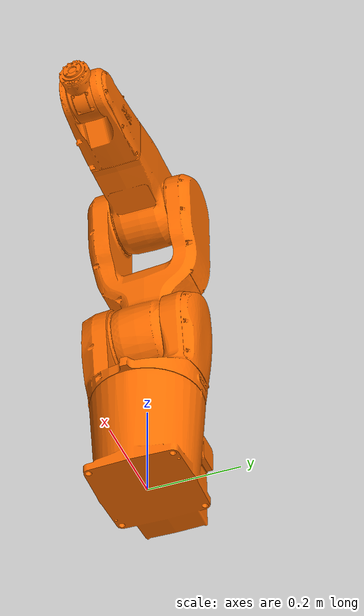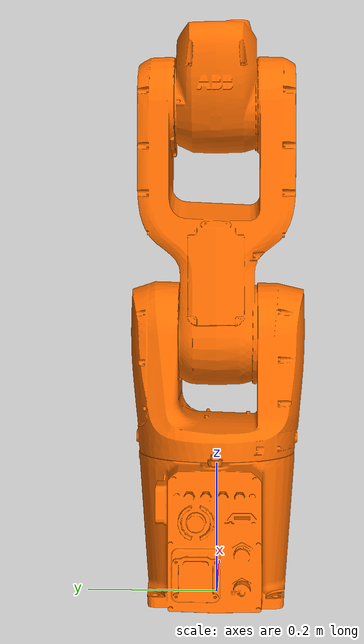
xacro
<?xml version="1.0" ?>

<robot name="abb_irb1200" xmlns:xacro="http://ros.org/wiki/xacro">
	<xacro:include filename="$(find abb_irb1200_support)/urdf/irb1200_macro.xacro"/>
	<!-- Links below are from axis of one link the next link (joint offsets). This is due the stl export with the base of the robot as the origin-->
	<xacro:abb_irb1200 prefix="" link_1_X="0" link_1_Y="0" link_1_Z="0.219" link_2_X="0" link_2_Y="0" link_2_Z="0.1801" link_3_X="0" link_3_Y="0" link_3_Z="0.35" link_4_X="0.1885" link_4_Y="0" link_4_Z="0.042" link_5_X="0.1555" link_5_Y="0" link_5_Z="0" link_6_X="0.077" link_6_Y="0" link_6_Z="0"/>
</robot>

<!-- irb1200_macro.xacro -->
<robot xmlns:xacro="http://ros.org/wiki/xacro">
<xacro:macro name="abb_irb1200" params="prefix link_1_X link_1_Y link_1_Z link_2_X link_2_Y link_2_Z link_3_X link_3_Y link_3_Z link_4_X link_4_Y link_4_Z link_5_X link_5_Y link_5_Z link_6_X link_6_Y link_6_Z">
    <!-- link list -->
    <link name="${prefix}base_link">
        <visual>
            <origin xyz="0 0 0" rpy="0 0 0"/>
            <geometry>
                <mesh filename="package://abb_irb1200_support/meshes/irb1200/visual/base_link.stl"/>
            </geometry>
            <material name="abb_orange">
                <color rgba="1 0.43 0 1"/>
            </material>
        </visual>
        <collision>
            <geometry>
                <mesh filename="package://abb_irb1200_support/meshes/irb1200/collision/base_link.stl"/>
            </geometry>
            <material name="yellow">
                <color rgba="0 1 1 1"/>
            </material>
        </collision>
    </link>
    <link name="${prefix}link_1">
        <visual>
            <origin xyz="-${link_1_X} -${link_1_Y} -${link_1_Z}" rpy="0 0 0"/>
            <geometry>
                <mesh filename="package://abb_irb1200_support/meshes/irb1200/visual/link_1.stl"/>
            </geometry>
            <material name="abb_orange"/>
        </visual>
        <collision>
            <origin xyz="-${link_1_X} -${link_1_Y} -${link_1_Z}" rpy="0 0 0"/>
            <geometry>
                <mesh filename="package://abb_irb1200_support/meshes/irb1200/collision/link_1.stl"/>
            </geometry>
            <material name="yellow"/>
        </collision>
    </link>
    <link name="${prefix}link_2">
        <visual>
            <origin xyz="
                -${link_2_X+link_1_X}
                -${link_2_Y+link_1_Y}
                -${link_2_Z+link_1_Z}" rpy="0 0 0"/>
            <geometry>
                <mesh filename="package://abb_irb1200_support/meshes/irb1200/visual/link_2.stl"/>
            </geometry>
            <material name="abb_orange"/>
        </visual>
        <collision>
            <origin xyz="
                -${link_2_X+link_1_X}
                -${link_2_Y+link_1_Y}
                -${link_2_Z+link_1_Z}" rpy="0 0 0"/>
            <geometry>
                <mesh filename="package://abb_irb1200_support/meshes/irb1200/collision/link_2.stl"/>
            </geometry>
            <material name="yellow"/>
        </collision>
    </link>
    <link name="${prefix}link_3">
        <visual>
            <origin xyz="
                -${link_3_X+link_2_X+link_1_X}
                -${link_3_Y+link_2_Y+link_1_Y}
                -${link_3_Z+link_2_Z+link_1_Z}" rpy="0 0 0"/>
            <geometry>
                <mesh filename="package://abb_irb1200_support/meshes/irb1200/visual/link_3.stl"/>
            </geometry>
            <material name="abb_orange"/>
        </visual>
        <collision>
            <origin xyz="
                -${link_3_X+link_2_X+link_1_X}
                -${link_3_Y+link_2_Y+link_1_Y}
                -${link_3_Z+link_2_Z+link_1_Z}" rpy="0 0 0"/>
            <geometry>
                <mesh filename="package://abb_irb1200_support/meshes/irb1200/collision/link_3.stl"/>
            </geometry>
            <material name="yellow"/>
        </collision>
    </link>
    <link name="${prefix}link_4">
        <visual>
            <origin xyz="
                -${link_4_X+link_3_X+link_2_X+link_1_X} -${link_4_Y+link_3_Y+link_2_Y+link_1_Y} -${link_4_Z+link_3_Z+link_2_Z+link_1_Z}" rpy="0 0 0"/>
            <geometry>
                <mesh filename="package://abb_irb1200_support/meshes/irb1200/visual/link_4.stl"/>
            </geometry>
            <material name="abb_orange"/>
        </visual>
        <collision>
            <origin xyz="
                -${link_4_X+link_3_X+link_2_X+link_1_X} -${link_4_Y+link_3_Y+link_2_Y+link_1_Y} -${link_4_Z+link_3_Z+link_2_Z+link_1_Z}" rpy="0 0 0"/>
            <geometry>
                <mesh filename="package://abb_irb1200_support/meshes/irb1200/collision/link_4.stl"/>
            </geometry>
            <material name="yellow"/>
        </collision>
    </link>
    <link name="${prefix}link_5">
        <visual>
            <origin xyz="
                -${link_5_X+link_4_X+link_3_X+link_2_X+link_1_X} -${link_5_Y+link_4_Y+link_3_Y+link_2_Y+link_1_Y} -${link_5_Z+link_4_Z+link_3_Z+link_2_Z+link_1_Z}" rpy="0 0 0"/>
            <geometry>
                <mesh filename="package://abb_irb1200_support/meshes/irb1200/visual/link_5.stl"/>
            </geometry>
            <material name="abb_orange"/>
        </visual>
        <collision>
            <origin xyz="
                -${link_5_X+link_4_X+link_3_X+link_2_X+link_1_X} -${link_5_Y+link_4_Y+link_3_Y+link_2_Y+link_1_Y} -${link_5_Z+link_4_Z+link_3_Z+link_2_Z+link_1_Z}" rpy="0 0 0"/>
            <geometry>
                <mesh filename="package://abb_irb1200_support/meshes/irb1200/collision/link_5.stl"/>
            </geometry>
            <material name="yellow"/>
        </collision>
    </link>
    <link name="${prefix}link_6">
        <visual>
            <origin xyz="
                -${link_6_X+link_5_X+link_4_X+link_3_X+link_2_X+link_1_X} -${link_6_Y+link_5_Y+link_4_Y+link_3_Y+link_2_Y+link_1_Y} -${link_6_Z+link_5_Z+link_4_Z+link_3_Z+link_2_Z+link_1_Z}" rpy="0 0 0"/>
            <geometry>
                <mesh filename="package://abb_irb1200_support/meshes/irb1200/visual/link_6.stl"/>
            </geometry>
            <material name="abb_orange"/>
        </visual>
        <collision>
            <origin xyz="
                -${link_6_X+link_5_X+link_4_X+link_3_X+link_2_X+link_1_X} -${link_6_Y+link_5_Y+link_4_Y+link_3_Y+link_2_Y+link_1_Y} -${link_6_Z+link_5_Z+link_4_Z+link_3_Z+link_2_Z+link_1_Z}" rpy="0 0 0"/>
            <geometry>
                <mesh filename="package://abb_irb1200_support/meshes/irb1200/collision/link_6.stl"/>
            </geometry>
            <material name="yellow"/>
        </collision>
    </link>
    <link name="${prefix}tool0"/>
    <!-- end of link list -->

    <!-- joint list -->
    <joint name="${prefix}joint_1" type="revolute">
        <origin xyz="0 0 ${link_1_Z}" rpy="0 0 0"/>
        <parent link="${prefix}base_link"/>
        <child link="${prefix}link_1"/>
        <axis xyz="0 0 1"/>
        <limit lower="-2.96705973" upper="2.96705973" effort="0" velocity="5.0265"/>
    </joint>
    <joint name="${prefix}joint_2" type="revolute">
        <origin xyz="0 0 ${link_2_Z}" rpy="0 0 0"/>
        <parent link="${prefix}link_1"/>
        <child link="${prefix}link_2"/>
        <axis xyz="0 1 0"/>
        <limit lower="-1.74533" upper="2.35619" effort="0" velocity="4.18879"/>
    </joint>
    <joint name="${prefix}joint_3" type="revolute">
        <origin xyz="0 0 ${link_3_Z}" rpy="0 0 0"/>
        <parent link="${prefix}link_2"/>
        <child link="${prefix}link_3"/>
        <axis xyz="0 1 0"/>
        <limit lower="-3.49066" upper="1.22173" effort="0" velocity="5.2360"/>
    </joint>
    <joint name="${prefix}joint_4" type="revolute">
        <origin xyz="${link_4_X} ${link_4_Y} ${link_4_Z}" rpy="0 0 0"/>
        <parent link="${prefix}link_3"/>
        <child link="${prefix}link_4"/>
        <axis xyz="1 0 0"/>
        <limit lower="-4.71239" upper="4.71239" effort="0" velocity="6.98131"/>
    </joint>
    <joint name="${prefix}joint_5" type="revolute">
        <origin xyz="${link_5_X} ${link_5_Y} ${link_5_Z}" rpy="0 0 0"/>
        <parent link="${prefix}link_4"/>
        <child link="${prefix}link_5"/>
        <axis xyz="0 1 0"/>
        <limit lower="-2.26893" upper="2.26893" effort="0" velocity="7.0686"/>
    </joint>
    <joint name="${prefix}joint_6" type="revolute">
        <origin xyz="${link_6_X} ${link_6_Y} ${link_6_Z}" rpy="0 0 0"/>
        <parent link="${prefix}link_5"/>
        <child link="${prefix}link_6"/>
        <axis xyz="1 0 0"/>
        <limit lower="-6.2832" upper="6.2832" effort="0" velocity="10.4720"/>
    </joint>
    <joint name="${prefix}joint_6-tool0" type="fixed">
        <parent link="${prefix}link_6"/>
        <child link="${prefix}tool0"/>
        <origin xyz="0 0 0" rpy="0 1.57079632679 0"/>
    </joint>
    <!-- end of joint list -->

    <!-- ROS base_link to ABB World Coordinates transform -->
    <link name="${prefix}base" />
    <joint name="${prefix}base_link-base" type="fixed">
        <origin xyz="0 0 0" rpy="0 0 0"/>
        <parent link="${prefix}base_link"/>
        <child link="${prefix}base"/>
    </joint>
</xacro:macro>
</robot>
